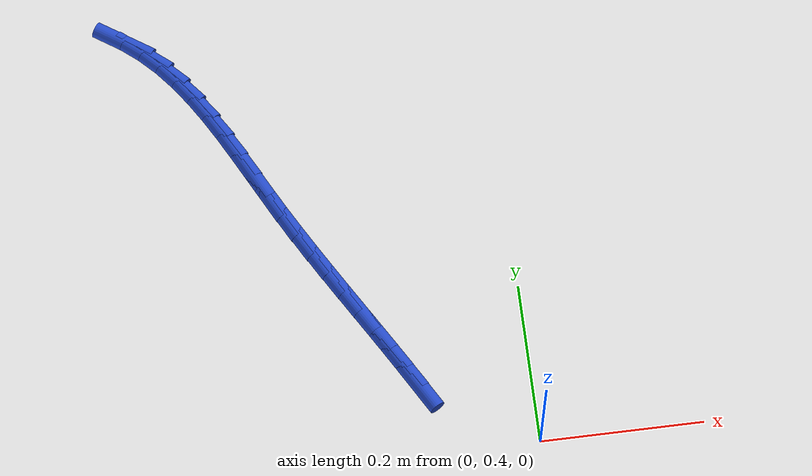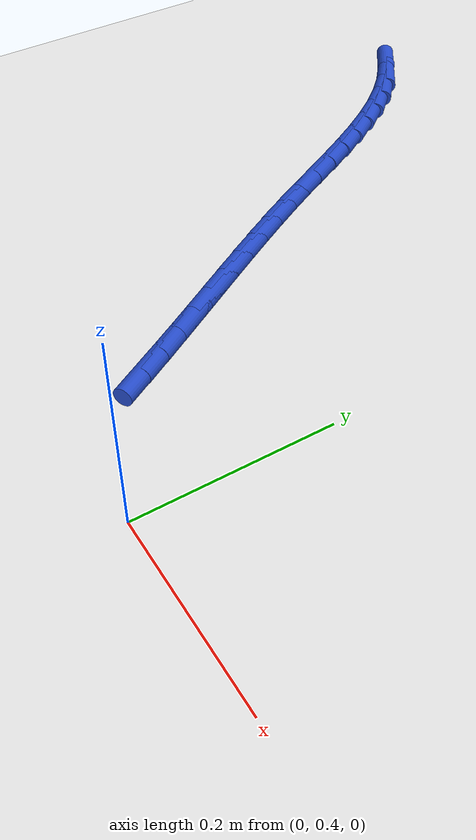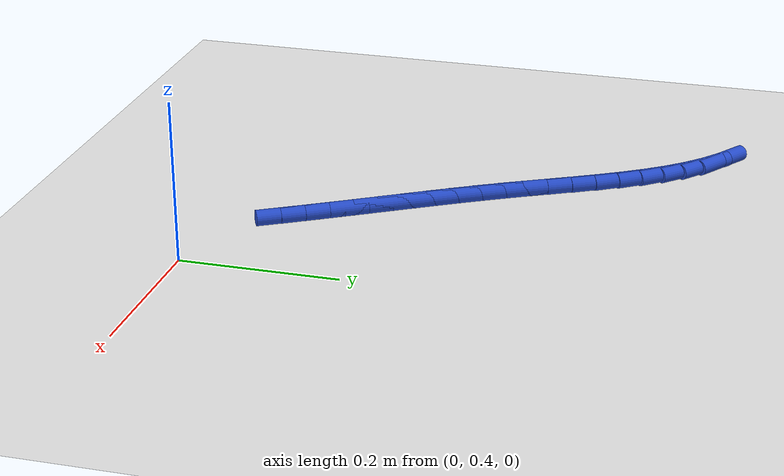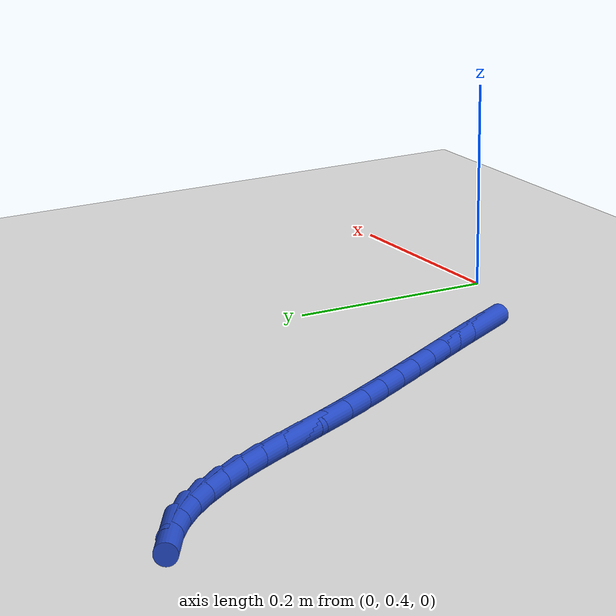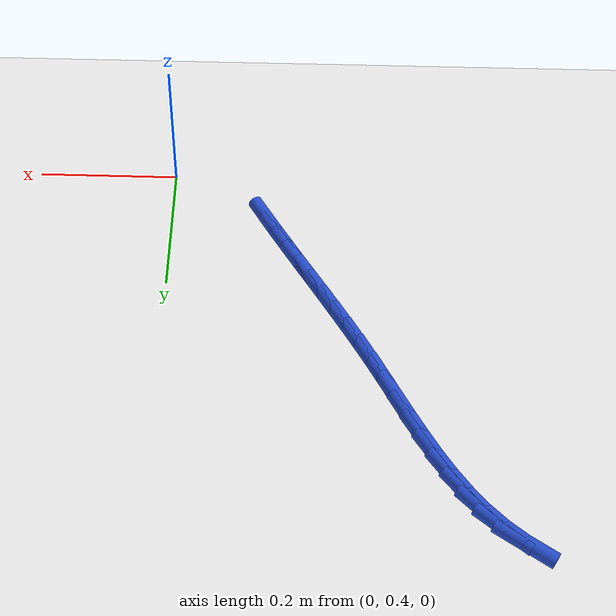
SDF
<sdf version="1.6">
 <world name="default">
  <model name="ground_plane">
   <static>1</static>
   <link name="link">
    <collision name="collision">
     <geometry><plane><normal>0 0 1</normal><size>100 100</size></plane></geometry>
     <surface><friction><ode><mu>100</mu><mu2>50</mu2></ode></friction></surface>
    </collision>
    <visual name="visual">
     <cast_shadows>0</cast_shadows>
     <geometry><plane><normal>0 0 1</normal><size>100 100</size></plane></geometry>
     <material>
      <script><uri>file://media/materials/scripts/gazebo.material</uri><name>Gazebo/WhiteGlow</name></script>
     </material>
    </visual>
   </link>
  </model>
  <model name="line">
   <link name="link_17">
    <pose>-0.13794876982449938 0.48918920732519766 0.01 0 1.57 -1.0468006930487492</pose>
    <collision name="collision">
     <geometry><cylinder><radius>0.01</radius><length>0.08</length></cylinder></geometry>
    </collision>
    <visual name="visual">
     <material>
      <script><name>Gazebo/Blue</name><uri>file://media/materials/scripts/gazebo.material</uri></script>
     </material>
     <geometry><cylinder><radius>0.01</radius><length>0.08</length></cylinder></geometry>
    </visual>
   </link>
   <link name="link_18">
    <pose>-0.1531498220014576 0.5154940879527733 0.01 0 1.57 -1.0374760321924663</pose>
    <collision name="collision">
     <geometry><cylinder><radius>0.01</radius><length>0.08</length></cylinder></geometry>
    </collision>
    <visual name="visual">
     <material>
      <script><name>Gazebo/Blue</name><uri>file://media/materials/scripts/gazebo.material</uri></script>
     </material>
     <geometry><cylinder><radius>0.01</radius><length>0.08</length></cylinder></geometry>
    </visual>
   </link>
   <link name="link_19">
    <pose>-0.16865901225529395 0.5417636703254942 0.01 0 1.57 -1.0315473351146687</pose>
    <collision name="collision">
     <geometry><cylinder><radius>0.01</radius><length>0.08</length></cylinder></geometry>
    </collision>
    <visual name="visual">
     <material>
      <script><name>Gazebo/Blue</name><uri>file://media/materials/scripts/gazebo.material</uri></script>
     </material>
     <geometry><cylinder><radius>0.01</radius><length>0.08</length></cylinder></geometry>
    </visual>
   </link>
   <link name="link_20">
    <pose>-0.18438957340930456 0.568050967549667 0.01 0 1.57 -1.0289734326760365</pose>
    <collision name="collision">
     <geometry><cylinder><radius>0.01</radius><length>0.08</length></cylinder></geometry>
    </collision>
    <visual name="visual">
     <material>
      <script><name>Gazebo/Blue</name><uri>file://media/materials/scripts/gazebo.material</uri></script>
     </material>
     <geometry><cylinder><radius>0.01</radius><length>0.08</length></cylinder></geometry>
    </visual>
   </link>
   <link name="link_21">
    <pose>-0.20025473828678547 0.5944089927315978 0.01 0 1.57 -1.0297123258085692</pose>
    <collision name="collision">
     <geometry><cylinder><radius>0.01</radius><length>0.08</length></cylinder></geometry>
    </collision>
    <visual name="visual">
     <material>
      <script><name>Gazebo/Blue</name><uri>file://media/materials/scripts/gazebo.material</uri></script>
     </material>
     <geometry><cylinder><radius>0.01</radius><length>0.08</length></cylinder></geometry>
    </visual>
   </link>
   <link name="link_22">
    <pose>-0.2161677397110326 0.6208907589775927 0.01 0 1.57 -1.0337220750700191</pose>
    <collision name="collision">
     <geometry><cylinder><radius>0.01</radius><length>0.08</length></cylinder></geometry>
    </collision>
    <visual name="visual">
     <material>
      <script><name>Gazebo/Blue</name><uri>file://media/materials/scripts/gazebo.material</uri></script>
     </material>
     <geometry><cylinder><radius>0.01</radius><length>0.08</length></cylinder></geometry>
    </visual>
   </link>
   <link name="link_23">
    <pose>-0.23204181050534212 0.6475492793939581 0.01 0 1.57 -1.04096058332692</pose>
    <collision name="collision">
     <geometry><cylinder><radius>0.01</radius><length>0.08</length></cylinder></geometry>
    </collision>
    <visual name="visual">
     <material>
      <script><name>Gazebo/Blue</name><uri>file://media/materials/scripts/gazebo.material</uri></script>
     </material>
     <geometry><cylinder><radius>0.01</radius><length>0.08</length></cylinder></geometry>
    </visual>
   </link>
   <link name="link_24">
    <pose>-0.24779018349301002 0.6744375670870003 0.01 0 1.57 -1.0513843671418859</pose>
    <collision name="collision">
     <geometry><cylinder><radius>0.01</radius><length>0.08</length></cylinder></geometry>
    </collision>
    <visual name="visual">
     <material>
      <script><name>Gazebo/Blue</name><uri>file://media/materials/scripts/gazebo.material</uri></script>
     </material>
     <geometry><cylinder><radius>0.01</radius><length>0.08</length></cylinder></geometry>
    </visual>
   </link>
   <link name="link_25">
    <pose>-0.26332609149733227 0.7016086351630252 0.01 0 1.57 -1.064946412656028</pose>
    <collision name="collision">
     <geometry><cylinder><radius>0.01</radius><length>0.08</length></cylinder></geometry>
    </collision>
    <visual name="visual">
     <material>
      <script><name>Gazebo/Blue</name><uri>file://media/materials/scripts/gazebo.material</uri></script>
     </material>
     <geometry><cylinder><radius>0.01</radius><length>0.08</length></cylinder></geometry>
    </visual>
   </link>
   <link name="link_26">
    <pose>-0.27856276734160496 0.7291154967283394 0.01 0 1.57 -1.081235776814421</pose>
    <collision name="collision">
     <geometry><cylinder><radius>0.01</radius><length>0.08</length></cylinder></geometry>
    </collision>
    <visual name="visual">
     <material>
      <script><name>Gazebo/Blue</name><uri>file://media/materials/scripts/gazebo.material</uri></script>
     </material>
     <geometry><cylinder><radius>0.01</radius><length>0.08</length></cylinder></geometry>
    </visual>
   </link>
   <link name="link_27">
    <pose>-0.2934216428789661 0.7570025307242144 0.01 0 1.57 -1.0925038113711276</pose>
    <collision name="collision">
     <geometry><cylinder><radius>0.01</radius><length>0.08</length></cylinder></geometry>
    </collision>
    <visual name="visual">
     <material>
      <script><name>Gazebo/Blue</name><uri>file://media/materials/scripts/gazebo.material</uri></script>
     </material>
     <geometry><cylinder><radius>0.01</radius><length>0.08</length></cylinder></geometry>
    </visual>
   </link>
   <link name="link_28">
    <pose>-0.30800230620377717 0.785126504823479 0.01 0 1.57 -1.091392560817019</pose>
    <collision name="collision">
     <geometry><cylinder><radius>0.01</radius><length>0.08</length></cylinder></geometry>
    </collision>
    <visual name="visual">
     <material>
      <script><name>Gazebo/Blue</name><uri>file://media/materials/scripts/gazebo.material</uri></script>
     </material>
     <geometry><cylinder><radius>0.01</radius><length>0.08</length></cylinder></geometry>
    </visual>
   </link>
   <link name="link_29">
    <pose>-0.3225768973745958 0.8131624771351955 0.01 0 1.57 -1.0774780381619946</pose>
    <collision name="collision">
     <geometry><cylinder><radius>0.01</radius><length>0.08</length></cylinder></geometry>
    </collision>
    <visual name="visual">
     <material>
      <script><name>Gazebo/Blue</name><uri>file://media/materials/scripts/gazebo.material</uri></script>
     </material>
     <geometry><cylinder><radius>0.01</radius><length>0.08</length></cylinder></geometry>
    </visual>
   </link>
   <link name="link_30">
    <pose>-0.3374246342654462 0.8407780523223456 0.01 0 1.57 -1.050249906386674</pose>
    <collision name="collision">
     <geometry><cylinder><radius>0.01</radius><length>0.08</length></cylinder></geometry>
    </collision>
    <visual name="visual">
     <material>
      <script><name>Gazebo/Blue</name><uri>file://media/materials/scripts/gazebo.material</uri></script>
     </material>
     <geometry><cylinder><radius>0.01</radius><length>0.08</length></cylinder></geometry>
    </visual>
   </link>
   <link name="link_31">
    <pose>-0.35282473475035364 0.8676408350479127 0.01 0 1.57 -1.0088374173672885</pose>
    <collision name="collision">
     <geometry><cylinder><radius>0.01</radius><length>0.08</length></cylinder></geometry>
    </collision>
    <visual name="visual">
     <material>
      <script><name>Gazebo/Blue</name><uri>file://media/materials/scripts/gazebo.material</uri></script>
     </material>
     <geometry><cylinder><radius>0.01</radius><length>0.08</length></cylinder></geometry>
    </visual>
   </link>
   <link name="link_32">
    <pose>-0.3690564167033428 0.8934184299748793 0.01 0 1.57 -0.9521123101027495</pose>
    <collision name="collision">
     <geometry><cylinder><radius>0.01</radius><length>0.08</length></cylinder></geometry>
    </collision>
    <visual name="visual">
     <material>
      <script><name>Gazebo/Blue</name><uri>file://media/materials/scripts/gazebo.material</uri></script>
     </material>
     <geometry><cylinder><radius>0.01</radius><length>0.08</length></cylinder></geometry>
    </visual>
   </link>
   <link name="link_33">
    <pose>-0.3863988979984385 0.9177784417662279 0.01 0 1.57 -0.8789150454142938</pose>
    <collision name="collision">
     <geometry><cylinder><radius>0.01</radius><length>0.08</length></cylinder></geometry>
    </collision>
    <visual name="visual">
     <material>
      <script><name>Gazebo/Blue</name><uri>file://media/materials/scripts/gazebo.material</uri></script>
     </material>
     <geometry><cylinder><radius>0.01</radius><length>0.08</length></cylinder></geometry>
    </visual>
   </link>
   <link name="link_34">
    <pose>-0.40513139650966523 0.9403884750849406 0.01 0 1.57 -0.7884748871449913</pose>
    <collision name="collision">
     <geometry><cylinder><radius>0.01</radius><length>0.08</length></cylinder></geometry>
    </collision>
    <visual name="visual">
     <material>
      <script><name>Gazebo/Blue</name><uri>file://media/materials/scripts/gazebo.material</uri></script>
     </material>
     <geometry><cylinder><radius>0.01</radius><length>0.08</length></cylinder></geometry>
    </visual>
   </link>
   <link name="link_35">
    <pose>-0.4255331288579504 0.9609161362676324 0.01 0 1.57 -0.686061484330302</pose>
    <collision name="collision">
     <geometry><cylinder><radius>0.01</radius><length>0.08</length></cylinder></geometry>
    </collision>
    <visual name="visual">
     <material>
      <script><name>Gazebo/Blue</name><uri>file://media/materials/scripts/gazebo.material</uri></script>
     </material>
     <geometry><cylinder><radius>0.01</radius><length>0.08</length></cylinder></geometry>
    </visual>
   </link>
   <link name="link_36">
    <pose>-0.4477969704075304 0.9791443486795252 0.01 0 1.57 -0.5920509151765315</pose>
    <collision name="collision">
     <geometry><cylinder><radius>0.01</radius><length>0.08</length></cylinder></geometry>
    </collision>
    <visual name="visual">
     <material>
      <script><name>Gazebo/Blue</name><uri>file://media/materials/scripts/gazebo.material</uri></script>
     </material>
     <geometry><cylinder><radius>0.01</radius><length>0.08</length></cylinder></geometry>
    </visual>
   </link>
  </model>
 </world>
</sdf>
